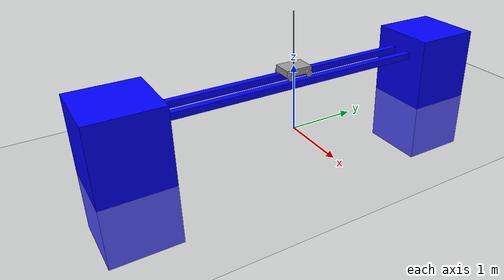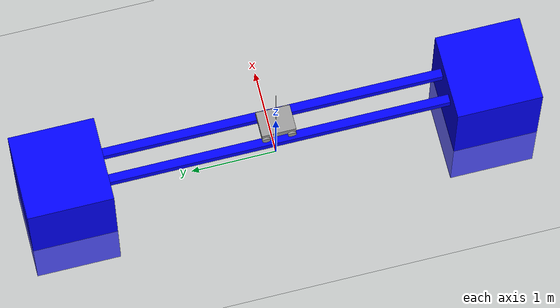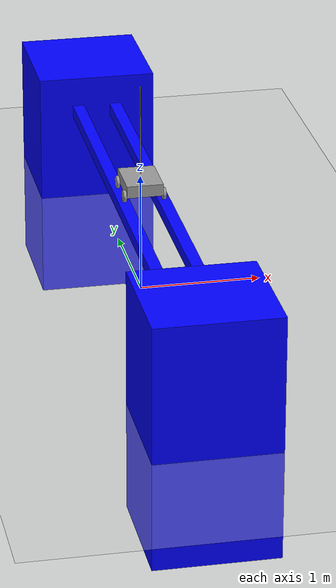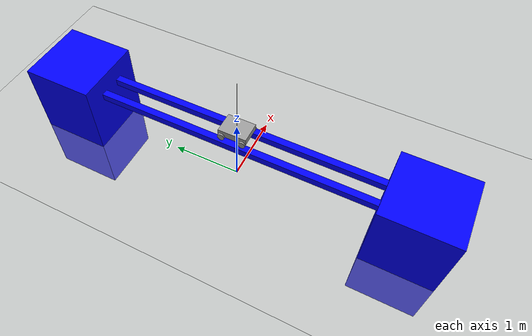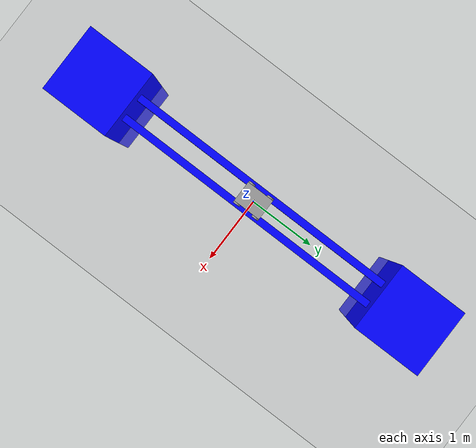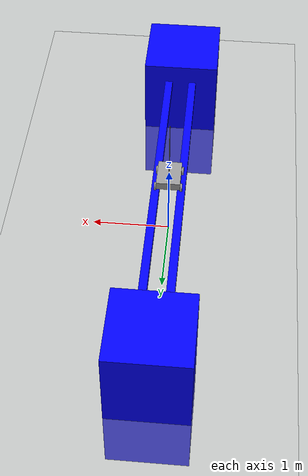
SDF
<sdf version="1.6">
  <world name="pendulum_world">
    <physics name="1ms" type="ode">
      <max_step_size>0.001</max_step_size>
      <real_time_factor>1.0</real_time_factor>
      <gravity>0 0 -9.81</gravity>
    </physics>

    <plugin
      filename="gz-sim-physics-system"
      name="gz::sim::systems::Physics">
    </plugin>
    <plugin
      filename="gz-sim-user-commands-system"
      name="gz::sim::systems::UserCommands">
    </plugin>
    <plugin
      filename="gz-sim-scene-broadcaster-system"
      name="gz::sim::systems::SceneBroadcaster">
    </plugin>
    <plugin
      filename="gz-sim-sensors-system"
      name="gz::sim::systems::Sensors">
      <render_engine>ogre2</render_engine>
    </plugin>

    <light type="directional" name="sun">
      <cast_shadows>true</cast_shadows>
      <pose>0 0 10 0 0 0</pose>
      <diffuse>0.8 0.8 0.8 1</diffuse>
      <specular>0.2 0.2 0.2 1</specular>
      <attenuation>
        <range>1000</range>
        <constant>0.9</constant>
        <linear>0.01</linear>
        <quadratic>0.001</quadratic>
      </attenuation>
      <direction>-0.5 0.1 -0.9</direction>
    </light>

    <model name="ground_plane">
      <static>true</static>
      <link name="link">
        <collision name="collision">
          <geometry>
            <plane>
              <normal>0 0 1</normal>
              <size>100 100</size>
            </plane>
          </geometry>
        </collision>
        <visual name="visual">
          <geometry>
            <plane>
              <normal>0 0 1</normal>
              <size>100 100</size>
            </plane>
          </geometry>
          <material>
            <ambient>0.8 0.8 0.8 1</ambient>
            <diffuse>0.8 0.8 0.8 1</diffuse>
            <specular>0.8 0.8 0.8 1</specular>
          </material>
        </visual>
      </link>
    </model>

     <include>
      <uri>model:///home/will/ros2_humble/src/inverted_pendulum/models/pendulum_cart/minimal_rail.sdf</uri>
      <name>minimal_track</name>
      <pose>0 0 0 0 0 0</pose>
    </include>

     <include>
      <uri>model:///home/will/ros2_humble/src/inverted_pendulum/models/pendulum_cart/model.sdf</uri>
      <name>pendulum_cart</name>
      <pose>0 0 0.85 0 0 0</pose>
    </include>

  </world>
</sdf>

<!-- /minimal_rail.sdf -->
<sdf version='1.6'>
  <model name='minimal_rail'>

    <link name='front_track'>
      <pose>0.1625 0 0.8 0 0 0</pose>
      <visual name='visual'>
        <geometry>
          <box>
            <size>0.1 5.0 0.1</size>  <!-- Thin in X, long in Y, thin in Z -->
          </box>
        </geometry>
        <material>
          <ambient>0 0 1 1</ambient>
          <diffuse>0 0 1 1</diffuse>
        </material>
      </visual>

      <collision name='collision'>
        <geometry>
          <box>
           <size>0.1 5.0 0.1</size>
          </box>
        </geometry>
        <surface>
          <friction>
            <ode>
              <mu>0.6</mu>
              <mu2>0.5</mu2>
            </ode>
          </friction>
        </surface>
      </collision>
    </link>

    <link name='back_track'>
      <pose>-0.1625 0 0.8 0 0 0</pose>
      <visual name='visual'>
        <geometry>
          <box>
            <size>0.1 5.0 0.1</size>  <!-- Thin in X, long in Y, thin in Z -->
          </box>
        </geometry>
        <material>
          <ambient>0 0 1 1</ambient>
          <diffuse>0 0 1 1</diffuse>
        </material>
      </visual>

          <collision name='collision'>
        <geometry>
          <box>
           <size>0.1 5.0 0.1</size>
          </box>
        </geometry>
        <surface>
          <friction>
            <ode>
              <mu>0.6</mu>
              <mu2>0.5</mu2>
            </ode>
          </friction>
        </surface>
      </collision>
    </link>

     <link name='left_end'>
      <pose>0 -2.5 0.1 0 0 0</pose>
      <visual name='visual'>
        <geometry>
          <box>
            <size>1 1 2</size>
          </box>
        </geometry>
        <material>
          <ambient>0 0 1 1</ambient>
          <diffuse>0 0 1 1</diffuse>
        </material>
      </visual>

      <collision name='collision'>
        <geometry>
          <box>
           <size>1 1 2</size>
          </box>
        </geometry>
        <surface>
          <friction>
            <ode>
              <mu>0.6</mu>
              <mu2>0.05</mu2>
            </ode>
          </friction>
        </surface>
      </collision>
    </link>

     <link name='right_end'>
      <pose>0 2.5 0.1 0 0 0</pose>
      <visual name='visual'>
        <geometry>
          <box>
            <size>1 1 2</size>
          </box>
        </geometry>
        <material>
          <ambient>0 0 1 1</ambient>
          <diffuse>0 0 1 1</diffuse>
        </material>
      </visual>

       <collision name='collision'>
        <geometry>
          <box>
           <size>1 1 2</size>
          </box>
        </geometry>
        <surface>
          <friction>
            <ode>
              <mu>0.6</mu>
              <mu2>0.05</mu2>
            </ode>
          </friction>
        </surface>
      </collision>
    </link>

    <static>true</static>
  </model>
</sdf>

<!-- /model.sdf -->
<sdf version='1.6'>
  <model name='pendulum_cart'>
    <link name='link_0'>
      <pose frame=''>-0 -0 0.1 0 -0 0</pose>
      <inertial>
        <mass>1</mass>
        <inertia>
          <ixx>0.01417</ixx>
          <ixy>0</ixy>
          <ixz>0</ixz>
          <iyy>0.00833333</iyy>
          <iyz>0</iyz>
          <izz>0.0208333</izz>
        </inertia>
        <pose frame=''>0 0 0 0 -0 0</pose>
      </inertial>
      <self_collide>0</self_collide>
      <kinematic>0</kinematic>
      <visual name='visual'>
        <pose frame=''>0 0 0 0 -0 0</pose>
        <geometry>
          <box>
            <size>0.3 0.4 0.1</size>
          </box>
        </geometry>
        <material>
          <lighting>1</lighting>
          <script>
            <uri>file://media/materials/scripts/gazebo.material</uri>
            <name>Gazebo/Grey</name>
          </script>
          <ambient>0.3 0.3 0.3 1</ambient>
          <diffuse>0.7 0.7 0.7 1</diffuse>
          <specular>0.01 0.01 0.01 1</specular>
          <emissive>0 0 0 1</emissive>
          <shader type='vertex'>
            <normal_map>__default__</normal_map>
          </shader>
        </material>
        <cast_shadows>1</cast_shadows>
        <transparency>0</transparency>
      </visual>
      <collision name='collision'>
        <laser_retro>0</laser_retro>
        <max_contacts>10</max_contacts>
        <pose frame=''>0 0 0 0 -0 0</pose>
        <geometry>
          <box>
            <size>0.3 0.4 0.1</size>
          </box>
        </geometry>
        <surface>
          <friction>
            <ode>
              <mu>1</mu>
              <mu2>1</mu2>
              <fdir1>0 0 0</fdir1>
              <slip1>0</slip1>
              <slip2>0</slip2>
            </ode>
            <torsional>
              <coefficient>1</coefficient>
              <patch_radius>0</patch_radius>
              <surface_radius>0</surface_radius>
              <use_patch_radius>1</use_patch_radius>
              <ode>
                <slip>0</slip>
              </ode>
            </torsional>
          </friction>
          <bounce>
            <restitution_coefficient>0</restitution_coefficient>
            <threshold>1e+06</threshold>
          </bounce>
          <contact>
            <collide_without_contact>0</collide_without_contact>
            <collide_without_contact_bitmask>1</collide_without_contact_bitmask>
            <collide_bitmask>1</collide_bitmask>
            <ode>
              <soft_cfm>0</soft_cfm>
              <soft_erp>0.2</soft_erp>
              <kp>1e+13</kp>
              <kd>1</kd>
              <max_vel>0.01</max_vel>
              <min_depth>0</min_depth>
            </ode>
            <bullet>
              <split_impulse>1</split_impulse>
              <split_impulse_penetration_threshold>-0.01</split_impulse_penetration_threshold>
              <soft_cfm>0</soft_cfm>
              <soft_erp>0.2</soft_erp>
              <kp>1e+13</kp>
              <kd>1</kd>
            </bullet>
          </contact>
        </surface>
      </collision>
    </link>
    <link name='link_0_0'>
      <pose frame=''>0 0 0.55 0 -0 0</pose>
      <inertial>
        <mass>0.1</mass>
        <inertia>
          <ixx>0.004688</ixx>
          <ixy>0</ixy>
          <ixz>0</ixz>
          <iyy>0.004688</iyy>
          <iyz>0</iyz>
          <izz>1.25e-06</izz>
        </inertia>
        <pose frame=''>0 0 0 0 -0 0</pose>
      </inertial>
      <gravity>1</gravity>
      <self_collide>0</self_collide>
      <kinematic>0</kinematic>
      <visual name='visual'>
        <pose frame=''>0 0 0 0 -0 0</pose>
        <geometry>
          <cylinder>
            <radius>0.005</radius>
            <length>0.75</length>
          </cylinder>
        </geometry>
        <material>
          <lighting>1</lighting>
          <script>
            <uri>file://media/materials/scripts/gazebo.material</uri>
            <name>Gazebo/Grey</name>
          </script>
          <ambient>0.3 0.3 0.3 1</ambient>
          <diffuse>0.7 0.7 0.7 1</diffuse>
          <specular>0.01 0.01 0.01 1</specular>
          <emissive>0 0 0 1</emissive>
          <shader type='vertex'>
            <normal_map>__default__</normal_map>
          </shader>
        </material>
        <cast_shadows>1</cast_shadows>
        <transparency>0</transparency>
      </visual>
      <collision name='collision'>
        <laser_retro>0</laser_retro>
        <max_contacts>10</max_contacts>
        <pose frame=''>0 0 0 0 -0 0</pose>
        <geometry>
          <cylinder>
            <radius>0.005</radius>
            <length>0.75</length>
          </cylinder>
        </geometry>
        <surface>
          <friction>
            <ode>
              <mu>1</mu>
              <mu2>1</mu2>
              <fdir1>0 0 0</fdir1>
              <slip1>0</slip1>
              <slip2>0</slip2>
            </ode>
            <torsional>
              <coefficient>1</coefficient>
              <patch_radius>0</patch_radius>
              <surface_radius>0</surface_radius>
              <use_patch_radius>1</use_patch_radius>
              <ode>
                <slip>0</slip>
              </ode>
            </torsional>
          </friction>
          <bounce>
            <restitution_coefficient>0</restitution_coefficient>
            <threshold>1e+06</threshold>
          </bounce>
          <contact>
            <collide_without_contact>0</collide_without_contact>
            <collide_without_contact_bitmask>1</collide_without_contact_bitmask>
            <collide_bitmask>1</collide_bitmask>
            <ode>
              <soft_cfm>0</soft_cfm>
              <soft_erp>0.2</soft_erp>
              <kp>1e+13</kp>
              <kd>1</kd>
              <max_vel>0.01</max_vel>
              <min_depth>0</min_depth>
            </ode>
            <bullet>
              <split_impulse>1</split_impulse>
              <split_impulse_penetration_threshold>-0.01</split_impulse_penetration_threshold>
              <soft_cfm>0</soft_cfm>
              <soft_erp>0.2</soft_erp>
              <kp>1e+13</kp>
              <kd>1</kd>
            </bullet>
          </contact>
        </surface>
      </collision>
    </link>
    <link name='link_1'>
      <pose frame=''>0.1625 -0.15 0.05 -3.14159 1.57079 -3.14159</pose>
      <inertial>
        <mass>0.25</mass>
        <inertia>
          <ixx>0.0001693</ixx>
          <ixy>0</ixy>
          <ixz>0</ixz>
          <iyy>0.0001693</iyy>
          <iyz>0</iyz>
          <izz>0.0003125</izz>
        </inertia>
        <pose frame=''>0 0 0 0 -0 0</pose>
      </inertial>
      <self_collide>0</self_collide>
      <kinematic>0</kinematic>
      <visual name='visual'>
        <pose frame=''>0 0 0 0 -0 0</pose>
        <geometry>
          <cylinder>
            <radius>0.05</radius>
            <length>0.025</length>
          </cylinder>
        </geometry>
        <material>
          <lighting>1</lighting>
          <script>
            <uri>file://media/materials/scripts/gazebo.material</uri>
            <name>Gazebo/Grey</name>
          </script>
          <ambient>0.3 0.3 0.3 1</ambient>
          <diffuse>0.7 0.7 0.7 1</diffuse>
          <specular>0.01 0.01 0.01 1</specular>
          <emissive>0 0 0 1</emissive>
          <shader type='vertex'>
            <normal_map>__default__</normal_map>
          </shader>
        </material>
        <cast_shadows>1</cast_shadows>
        <transparency>0</transparency>
      </visual>
      <collision name='collision'>
        <laser_retro>0</laser_retro>
        <max_contacts>10</max_contacts>
        <pose frame=''>0 0 0 0 -0 0</pose>
        <geometry>
          <cylinder>
            <radius>0.05</radius>
            <length>0.025</length>
          </cylinder>
        </geometry>
        <surface>
          <friction>
            <ode>
              <mu>1</mu>
              <mu2>1</mu2>
              <fdir1>0 0 0</fdir1>
              <slip1>0</slip1>
              <slip2>0</slip2>
            </ode>
            <torsional>
              <coefficient>1</coefficient>
              <patch_radius>0</patch_radius>
              <surface_radius>0</surface_radius>
              <use_patch_radius>1</use_patch_radius>
              <ode>
                <slip>0</slip>
              </ode>
            </torsional>
          </friction>
          <bounce>
            <restitution_coefficient>0</restitution_coefficient>
            <threshold>1e+06</threshold>
          </bounce>
          <contact>
            <collide_without_contact>0</collide_without_contact>
            <collide_without_contact_bitmask>1</collide_without_contact_bitmask>
            <collide_bitmask>1</collide_bitmask>
            <ode>
              <soft_cfm>0</soft_cfm>
              <soft_erp>0.2</soft_erp>
              <kp>1e+13</kp>
              <kd>1</kd>
              <max_vel>0.01</max_vel>
              <min_depth>0</min_depth>
            </ode>
            <bullet>
              <split_impulse>1</split_impulse>
              <split_impulse_penetration_threshold>-0.01</split_impulse_penetration_threshold>
              <soft_cfm>0</soft_cfm>
              <soft_erp>0.2</soft_erp>
              <kp>1e+13</kp>
              <kd>1</kd>
            </bullet>
          </contact>
        </surface>
      </collision>
    </link>
    <link name='link_1_clone'>
      <pose frame=''>0.1625 0.15 0.05 -3.14159 1.57079 -3.14159</pose>
      <inertial>
        <mass>0.25</mass>
        <inertia>
          <ixx>0.0001693</ixx>
          <ixy>0</ixy>
          <ixz>0</ixz>
          <iyy>0.0001693</iyy>
          <iyz>0</iyz>
          <izz>0.0003125</izz>
        </inertia>
        <pose frame=''>0 0 0 0 -0 0</pose>
      </inertial>
      <self_collide>0</self_collide>
      <kinematic>0</kinematic>
      <visual name='visual'>
        <pose frame=''>0 0 0 0 -0 0</pose>
        <geometry>
          <cylinder>
            <radius>0.05</radius>
            <length>0.025</length>
          </cylinder>
        </geometry>
        <material>
          <lighting>1</lighting>
          <script>
            <uri>file://media/materials/scripts/gazebo.material</uri>
            <name>Gazebo/Grey</name>
          </script>
          <ambient>0.3 0.3 0.3 1</ambient>
          <diffuse>0.7 0.7 0.7 1</diffuse>
          <specular>0.01 0.01 0.01 1</specular>
          <emissive>0 0 0 1</emissive>
          <shader type='vertex'>
            <normal_map>__default__</normal_map>
          </shader>
        </material>
        <cast_shadows>1</cast_shadows>
        <transparency>0</transparency>
      </visual>
      <collision name='collision'>
        <laser_retro>0</laser_retro>
        <max_contacts>10</max_contacts>
        <pose frame=''>0 0 0 0 -0 0</pose>
        <geometry>
          <cylinder>
            <radius>0.05</radius>
            <length>0.025</length>
          </cylinder>
        </geometry>
        <surface>
          <friction>
            <ode>
              <mu>1</mu>
              <mu2>1</mu2>
              <fdir1>0 0 0</fdir1>
              <slip1>0</slip1>
              <slip2>0</slip2>
            </ode>
            <torsional>
              <coefficient>1</coefficient>
              <patch_radius>0</patch_radius>
              <surface_radius>0</surface_radius>
              <use_patch_radius>1</use_patch_radius>
              <ode>
                <slip>0</slip>
              </ode>
            </torsional>
          </friction>
          <bounce>
            <restitution_coefficient>0</restitution_coefficient>
            <threshold>1e+06</threshold>
          </bounce>
          <contact>
            <collide_without_contact>0</collide_without_contact>
            <collide_without_contact_bitmask>1</collide_without_contact_bitmask>
            <collide_bitmask>1</collide_bitmask>
            <ode>
              <soft_cfm>0</soft_cfm>
              <soft_erp>0.2</soft_erp>
              <kp>1e+13</kp>
              <kd>1</kd>
              <max_vel>0.01</max_vel>
              <min_depth>0</min_depth>
            </ode>
            <bullet>
              <split_impulse>1</split_impulse>
              <split_impulse_penetration_threshold>-0.01</split_impulse_penetration_threshold>
              <soft_cfm>0</soft_cfm>
              <soft_erp>0.2</soft_erp>
              <kp>1e+13</kp>
              <kd>1</kd>
            </bullet>
          </contact>
        </surface>
      </collision>
    </link>
    <link name='link_1_clone_0'>
      <pose frame=''>-0.1625 0.15 0.05 -3.14159 1.57079 -3.14159</pose>
      <inertial>
        <mass>0.25</mass>
        <inertia>
          <ixx>0.0001693</ixx>
          <ixy>0</ixy>
          <ixz>0</ixz>
          <iyy>0.0001693</iyy>
          <iyz>0</iyz>
          <izz>0.0003125</izz>
        </inertia>
        <pose frame=''>0 0 0 0 -0 0</pose>
      </inertial>
      <self_collide>0</self_collide>
      <kinematic>0</kinematic>
      <visual name='visual'>
        <pose frame=''>0 0 0 0 -0 0</pose>
        <geometry>
          <cylinder>
            <radius>0.05</radius>
            <length>0.025</length>
          </cylinder>
        </geometry>
        <material>
          <lighting>1</lighting>
          <script>
            <uri>file://media/materials/scripts/gazebo.material</uri>
            <name>Gazebo/Grey</name>
          </script>
          <ambient>0.3 0.3 0.3 1</ambient>
          <diffuse>0.7 0.7 0.7 1</diffuse>
          <specular>0.01 0.01 0.01 1</specular>
          <emissive>0 0 0 1</emissive>
          <shader type='vertex'>
            <normal_map>__default__</normal_map>
          </shader>
        </material>
        <cast_shadows>1</cast_shadows>
        <transparency>0</transparency>
      </visual>
      <collision name='collision'>
        <laser_retro>0</laser_retro>
        <max_contacts>10</max_contacts>
        <pose frame=''>0 0 0 0 -0 0</pose>
        <geometry>
          <cylinder>
            <radius>0.05</radius>
            <length>0.025</length>
          </cylinder>
        </geometry>
        <surface>
          <friction>
            <ode>
              <mu>1</mu>
              <mu2>1</mu2>
              <fdir1>0 0 0</fdir1>
              <slip1>0</slip1>
              <slip2>0</slip2>
            </ode>
            <torsional>
              <coefficient>1</coefficient>
              <patch_radius>0</patch_radius>
              <surface_radius>0</surface_radius>
              <use_patch_radius>1</use_patch_radius>
              <ode>
                <slip>0</slip>
              </ode>
            </torsional>
          </friction>
          <bounce>
            <restitution_coefficient>0</restitution_coefficient>
            <threshold>1e+06</threshold>
          </bounce>
          <contact>
            <collide_without_contact>0</collide_without_contact>
            <collide_without_contact_bitmask>1</collide_without_contact_bitmask>
            <collide_bitmask>1</collide_bitmask>
            <ode>
              <soft_cfm>0</soft_cfm>
              <soft_erp>0.2</soft_erp>
              <kp>1e+13</kp>
              <kd>1</kd>
              <max_vel>0.01</max_vel>
              <min_depth>0</min_depth>
            </ode>
            <bullet>
              <split_impulse>1</split_impulse>
              <split_impulse_penetration_threshold>-0.01</split_impulse_penetration_threshold>
              <soft_cfm>0</soft_cfm>
              <soft_erp>0.2</soft_erp>
              <kp>1e+13</kp>
              <kd>1</kd>
            </bullet>
          </contact>
        </surface>
      </collision>
    </link>
    <link name='link_1_clone_1'>
      <pose frame=''>-0.1625 -0.15 0.05 -3.14159 1.57079 -3.14159</pose>
      <inertial>
        <mass>0.25</mass>
        <inertia>
          <ixx>0.0001693</ixx>
          <ixy>0</ixy>
          <ixz>0</ixz>
          <iyy>0.0001693</iyy>
          <iyz>0</iyz>
          <izz>0.0003125</izz>
        </inertia>
        <pose frame=''>0 0 0 0 -0 0</pose>
      </inertial>
      <self_collide>0</self_collide>
      <kinematic>0</kinematic>
      <visual name='visual'>
        <pose frame=''>0 0 0 0 -0 0</pose>
        <geometry>
          <cylinder>
            <radius>0.05</radius>
            <length>0.025</length>
          </cylinder>
        </geometry>
        <material>
          <lighting>1</lighting>
          <script>
            <uri>file://media/materials/scripts/gazebo.material</uri>
            <name>Gazebo/Grey</name>
          </script>
          <ambient>0.3 0.3 0.3 1</ambient>
          <diffuse>0.7 0.7 0.7 1</diffuse>
          <specular>0.01 0.01 0.01 1</specular>
          <emissive>0 0 0 1</emissive>
          <shader type='vertex'>
            <normal_map>__default__</normal_map>
          </shader>
        </material>
        <cast_shadows>1</cast_shadows>
        <transparency>0</transparency>
      </visual>
      <collision name='collision'>
        <laser_retro>0</laser_retro>
        <max_contacts>10</max_contacts>
        <pose frame=''>0 0 0 0 -0 0</pose>
        <geometry>
          <cylinder>
            <radius>0.05</radius>
            <length>0.025</length>
          </cylinder>
        </geometry>
        <surface>
          <friction>
            <ode>
              <mu>1</mu>
              <mu2>1</mu2>
              <fdir1>0 0 0</fdir1>
              <slip1>0</slip1>
              <slip2>0</slip2>
            </ode>
            <torsional>
              <coefficient>1</coefficient>
              <patch_radius>0</patch_radius>
              <surface_radius>0</surface_radius>
              <use_patch_radius>1</use_patch_radius>
              <ode>
                <slip>0</slip>
              </ode>
            </torsional>
          </friction>
          <bounce>
            <restitution_coefficient>0</restitution_coefficient>
            <threshold>1e+06</threshold>
          </bounce>
          <contact>
            <collide_without_contact>0</collide_without_contact>
            <collide_without_contact_bitmask>1</collide_without_contact_bitmask>
            <collide_bitmask>1</collide_bitmask>
            <ode>
              <soft_cfm>0</soft_cfm>
              <soft_erp>0.2</soft_erp>
              <kp>1e+13</kp>
              <kd>1</kd>
              <max_vel>0.01</max_vel>
              <min_depth>0</min_depth>
            </ode>
            <bullet>
              <split_impulse>1</split_impulse>
              <split_impulse_penetration_threshold>-0.01</split_impulse_penetration_threshold>
              <soft_cfm>0</soft_cfm>
              <soft_erp>0.2</soft_erp>
              <kp>1e+13</kp>
              <kd>1</kd>
            </bullet>
          </contact>
        </surface>
      </collision>
    </link>
    <joint name='pendulum_pivot' type='revolute'>
      <parent>link_0</parent>
      <child>link_0_0</child>
      <pose frame=''>0 0 -0.375 0 -0 0</pose>
      <axis>
        <xyz>1 0 0</xyz>
        <use_parent_model_frame>0</use_parent_model_frame>
        <limit>
          <lower>-1.79769e+308</lower>
          <upper>1.79769e+308</upper>
          <effort>-1</effort>
          <velocity>-1</velocity>
        </limit>
        <dynamics>
          <spring_reference>0</spring_reference>
          <spring_stiffness>0</spring_stiffness>
          <damping>0</damping>
          <friction>0</friction>
        </dynamics>
      </axis>
      <physics>
        <ode>
          <limit>
            <cfm>0</cfm>
            <erp>0.2</erp>
          </limit>
          <suspension>
            <cfm>0</cfm>
            <erp>0.2</erp>
          </suspension>
        </ode>
      </physics>
    </joint>
    <joint name='br_wheel' type='revolute'>
      <parent>link_0</parent>
      <child>link_1</child>
      <pose frame=''>0 0 0 0 -0 0</pose>
      <axis>
        <xyz>0 0 1</xyz>
        <use_parent_model_frame>0</use_parent_model_frame>
        <limit>
          <lower>-1.79769e+308</lower>
          <upper>1.79769e+308</upper>
          <effort>-1</effort>
          <velocity>-1</velocity>
        </limit>
        <dynamics>
          <spring_reference>0</spring_reference>
          <spring_stiffness>0</spring_stiffness>
          <damping>0</damping>
          <friction>0</friction>
        </dynamics>
      </axis>
      <physics>
        <ode>
          <limit>
            <cfm>0</cfm>
            <erp>0.2</erp>
          </limit>
          <suspension>
            <cfm>0</cfm>
            <erp>0.2</erp>
          </suspension>
        </ode>
      </physics>
    </joint>
    <joint name='fr_wheel' type='revolute'>
      <parent>link_0</parent>
      <child>link_1_clone</child>
      <pose frame=''>0 0 0 0 -0 0</pose>
      <axis>
        <xyz>0 0 1</xyz>
        <use_parent_model_frame>0</use_parent_model_frame>
        <limit>
          <lower>-1.79769e+308</lower>
          <upper>1.79769e+308</upper>
          <effort>-1</effort>
          <velocity>-1</velocity>
        </limit>
        <dynamics>
          <spring_reference>0</spring_reference>
          <spring_stiffness>0</spring_stiffness>
          <damping>0</damping>
          <friction>0</friction>
        </dynamics>
      </axis>
      <physics>
        <ode>
          <limit>
            <cfm>0</cfm>
            <erp>0.2</erp>
          </limit>
          <suspension>
            <cfm>0</cfm>
            <erp>0.2</erp>
          </suspension>
        </ode>
      </physics>
    </joint>
    <joint name='bl_wheel' type='revolute'>
      <parent>link_0</parent>
      <child>link_1_clone_1</child>
      <pose frame=''>0 0 0 0 -0 0</pose>
      <axis>
        <xyz>0 0 1</xyz>
        <use_parent_model_frame>0</use_parent_model_frame>
        <limit>
          <lower>-1.79769e+308</lower>
          <upper>1.79769e+308</upper>
          <effort>-1</effort>
          <velocity>-1</velocity>
        </limit>
        <dynamics>
          <spring_reference>0</spring_reference>
          <spring_stiffness>0</spring_stiffness>
          <damping>0</damping>
          <friction>0</friction>
        </dynamics>
      </axis>
      <physics>
        <ode>
          <limit>
            <cfm>0</cfm>
            <erp>0.2</erp>
          </limit>
          <suspension>
            <cfm>0</cfm>
            <erp>0.2</erp>
          </suspension>
        </ode>
      </physics>
    </joint>
    <joint name='fl_wheel' type='revolute'>
      <parent>link_0</parent>
      <child>link_1_clone_0</child>
      <pose frame=''>0 0 0 0 -0 0</pose>
      <axis>
        <xyz>0 0 1</xyz>
        <use_parent_model_frame>0</use_parent_model_frame>
        <limit>
          <lower>-1.79769e+308</lower>
          <upper>1.79769e+308</upper>
          <effort>-1</effort>
          <velocity>-1</velocity>
        </limit>
        <dynamics>
          <spring_reference>0</spring_reference>
          <spring_stiffness>0</spring_stiffness>
          <damping>0</damping>
          <friction>0</friction>
        </dynamics>
      </axis>
      <physics>
        <ode>
          <limit>
            <cfm>0</cfm>
            <erp>0.2</erp>
          </limit>
          <suspension>
            <cfm>0</cfm>
            <erp>0.2</erp>
          </suspension>
        </ode>
      </physics>
    </joint>
    <static>0</static>
    <allow_auto_disable>1</allow_auto_disable>

    <plugin
      filename="gz-sim-odometry-publisher-system"
      name="gz::sim::systems::OdometryPublisher">
      <dimensions>3</dimensions>
    </plugin>
    <plugin name="gz::sim::systems::VelocityControl"
        filename="gz-sim-velocity-control-system">
        <topic>/model/pendulum_cart/cmd_vel</topic>
    </plugin>
  </model>
</sdf>
